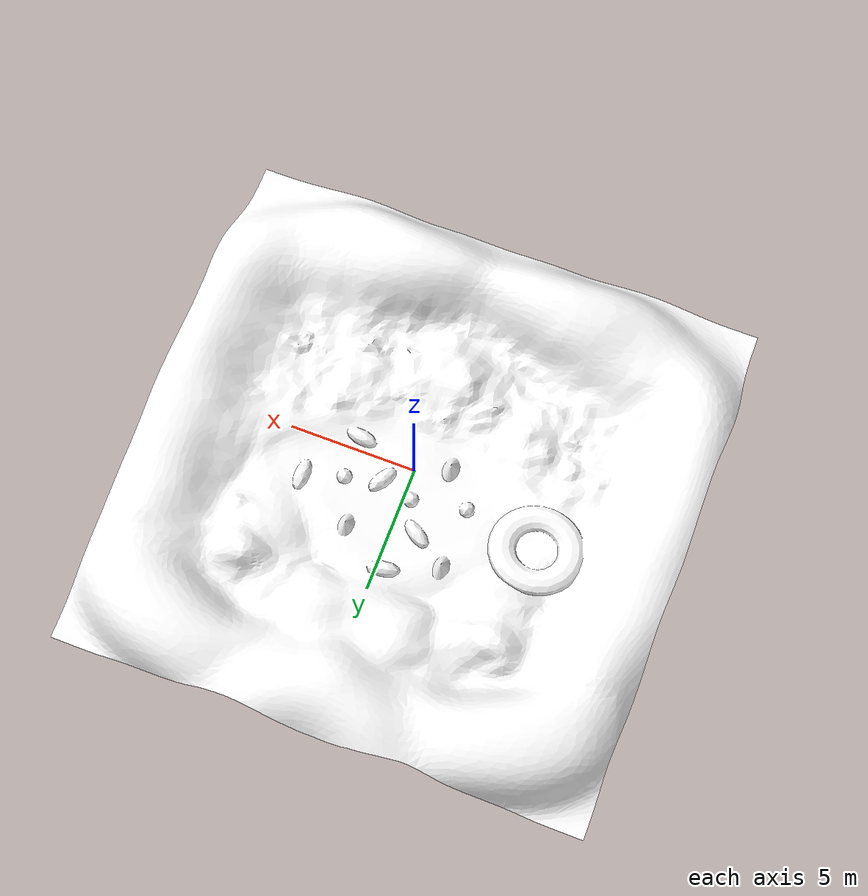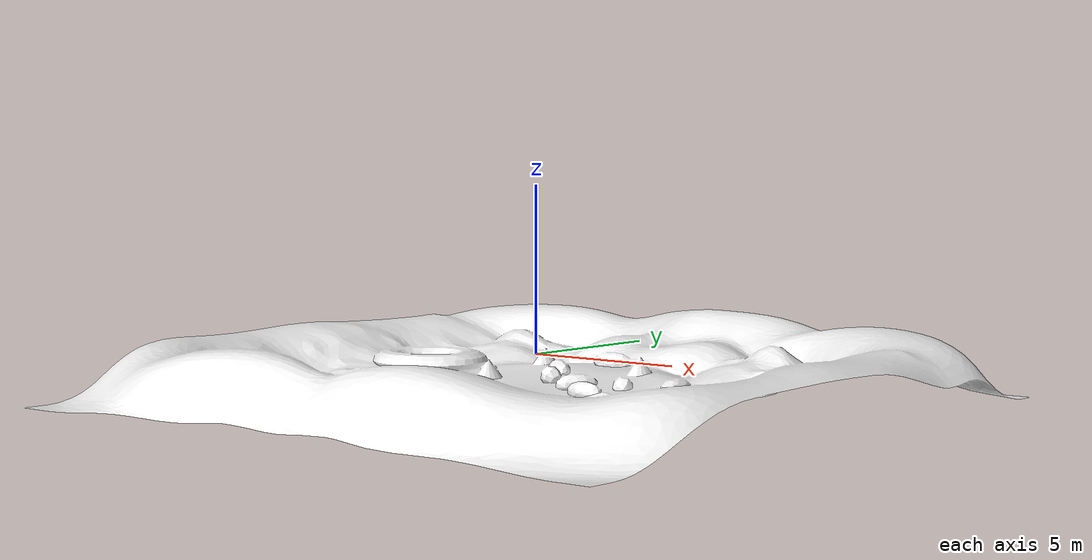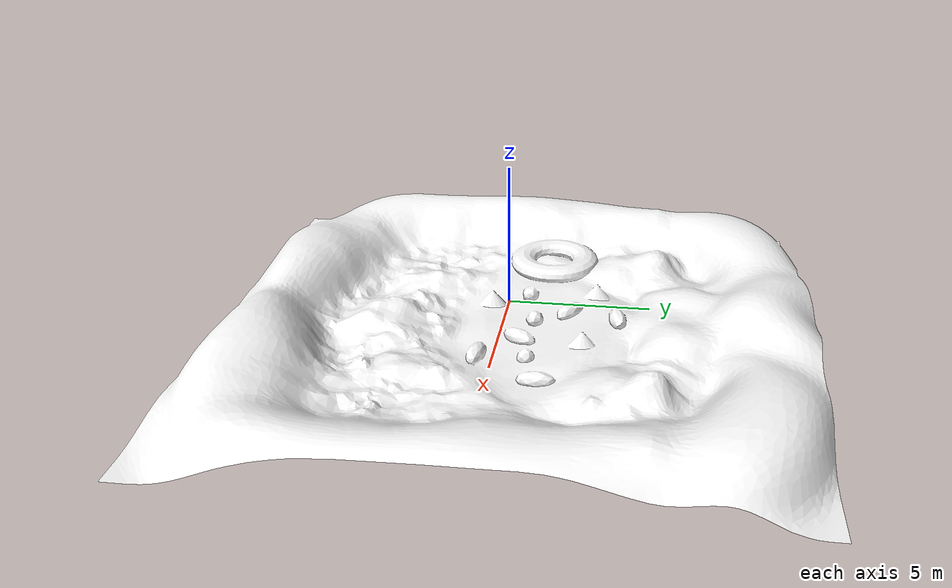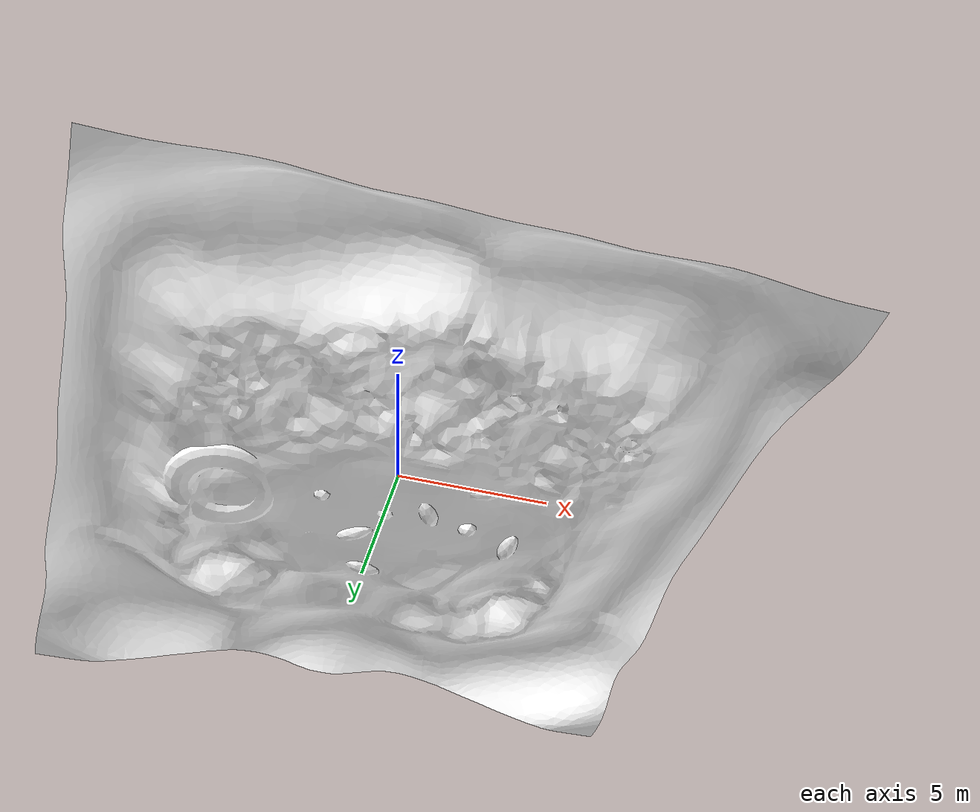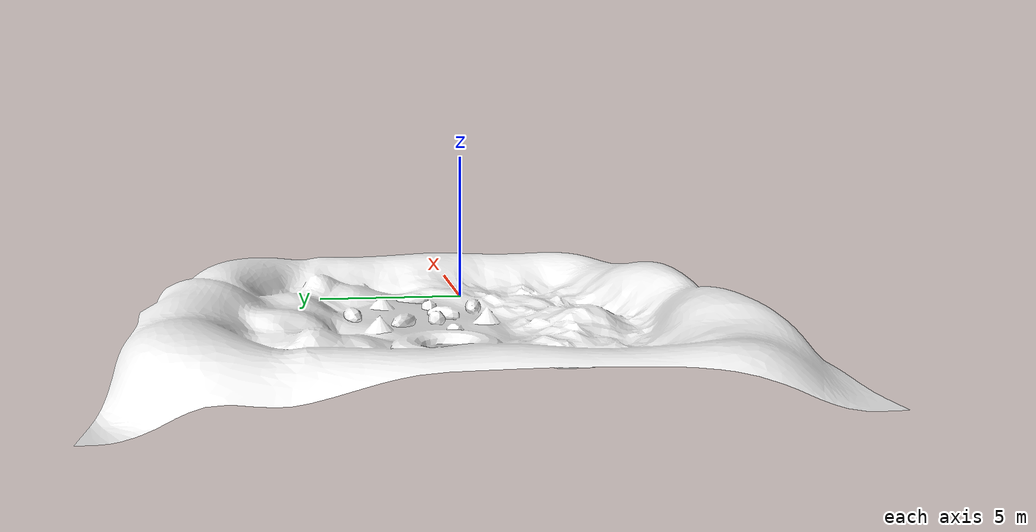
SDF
<?xml version="1.0" ?>
<sdf version="1.5">
  <model name='mapa_rover'>
    <static>1</static>
    <link name='link'>
      <collision name='collision'>
        <pose>0 0 0 0 0 0</pose>
        <geometry>
          <mesh>
            <uri>model://mapa_rover/meshes/mapa_2.dae</uri>
            <scale>2 2 2</scale>
          </mesh>
        </geometry>
        <surface>
          <contact>
            <collide_bitmask>65535</collide_bitmask>
            <ode/>
          </contact>
          <friction>
            <ode>
              <mu>100</mu>
              <mu2>50</mu2>
            </ode>
            <torsional>
              <ode/>
            </torsional>
          </friction>
          <bounce/>
        </surface>
        <max_contacts>10</max_contacts>
        <max_contacts>10</max_contacts>
      </collision>
      <visual name='visual'>
        <geometry>
          <mesh>
            <uri>model://mapa_rover/meshes/mapa_2.dae</uri>
            <scale>2 2 2</scale>
          </mesh>
        </geometry>
        <material>
          <script>
            <uri>model://mapa_rover/materials/textures/</uri>
            <uri>model://mapa_rover/materials/scripts/</uri>
            <name>RyCSV/mapatest</name>
          </script>
          <ambient>1 1 1 1</ambient>
          <diffuse>1 1 1 1</diffuse>
          <specular>1 1 1 1</specular>
          <emissive>0 0 0 1</emissive>
        </material>
      </visual>
      <self_collide>0</self_collide>
      <enable_wind>0</enable_wind>
      <kinematic>0</kinematic>
    </link>
  </model>
</sdf>
